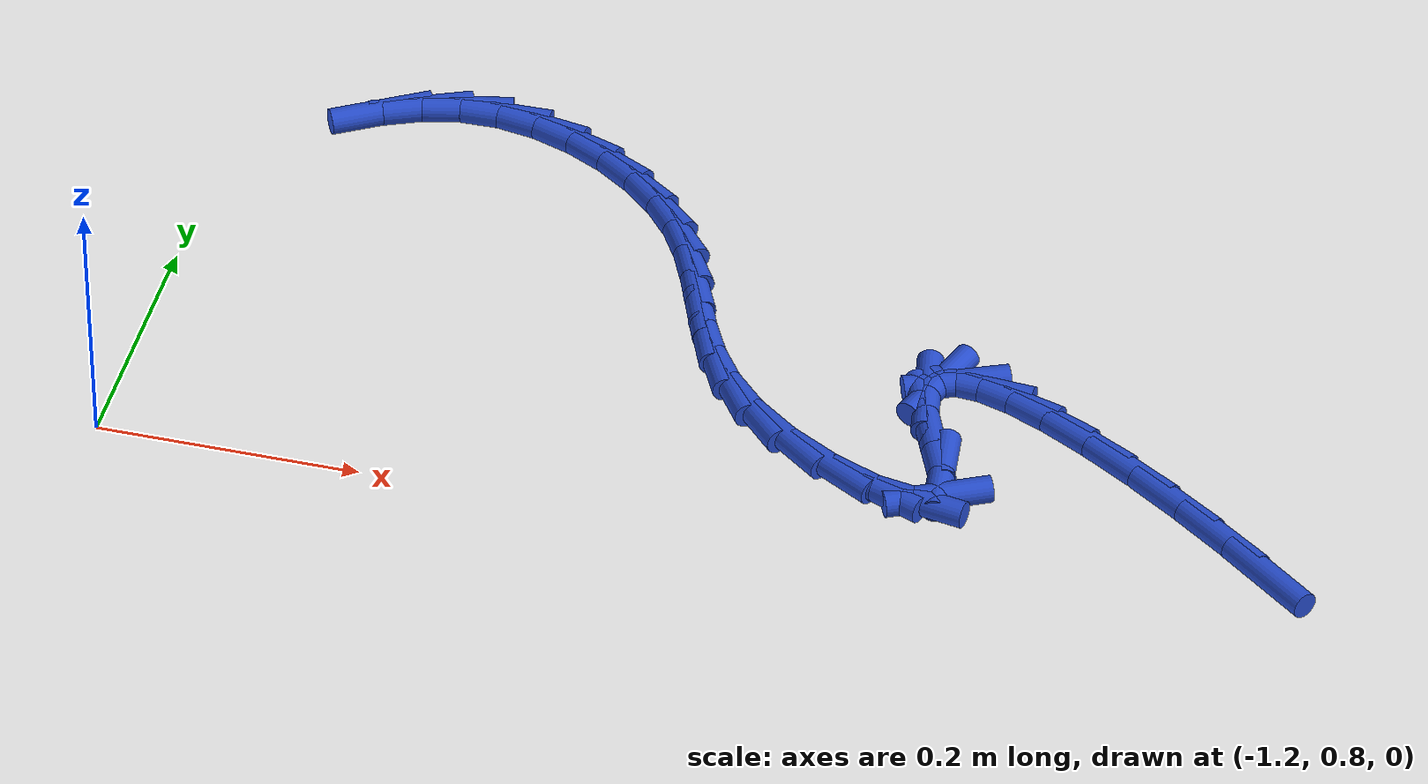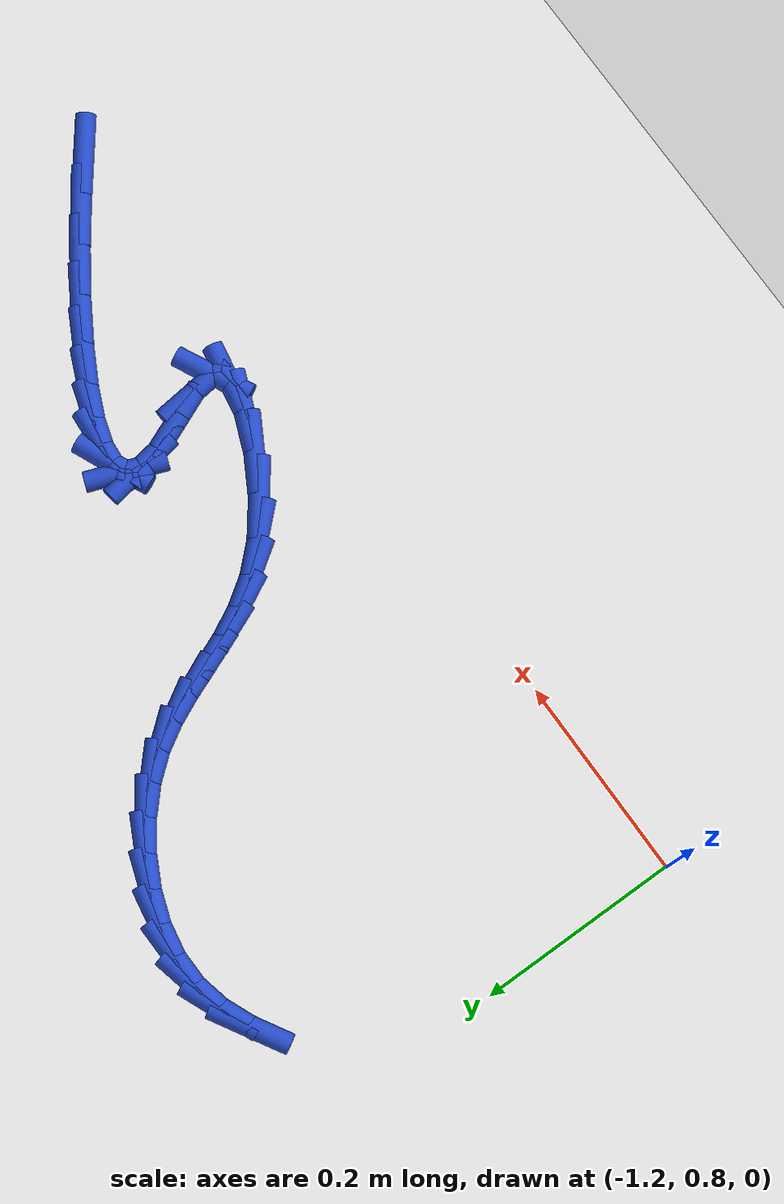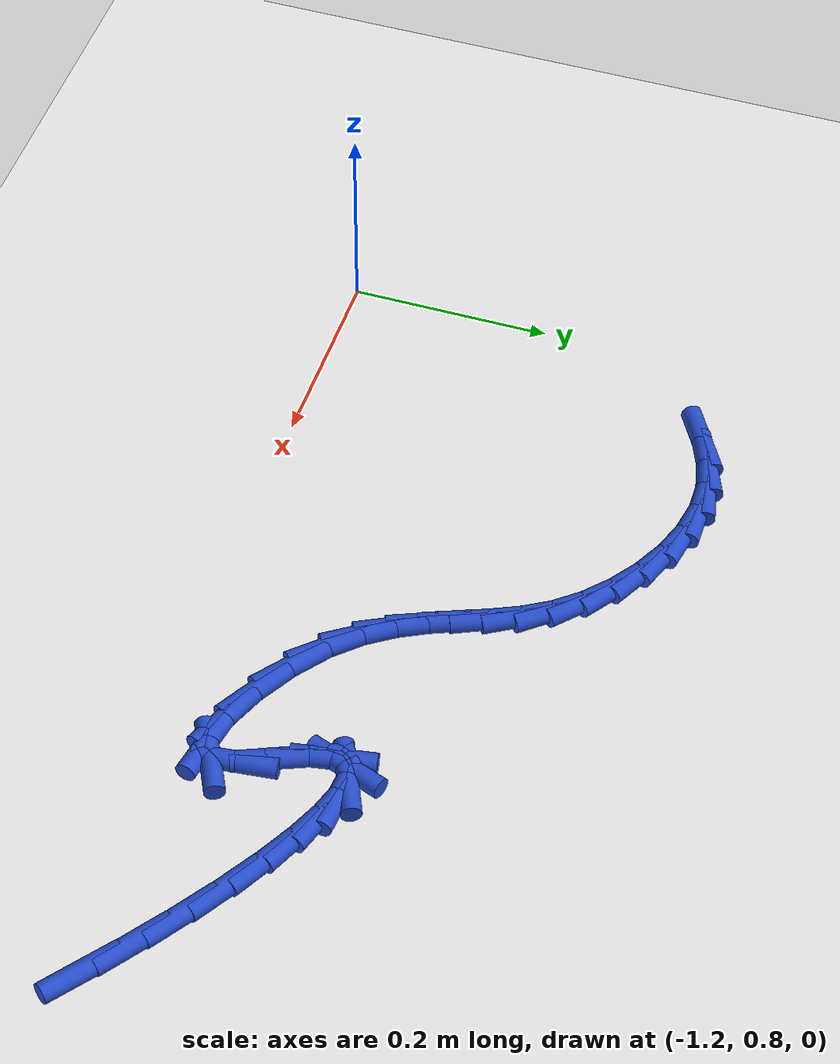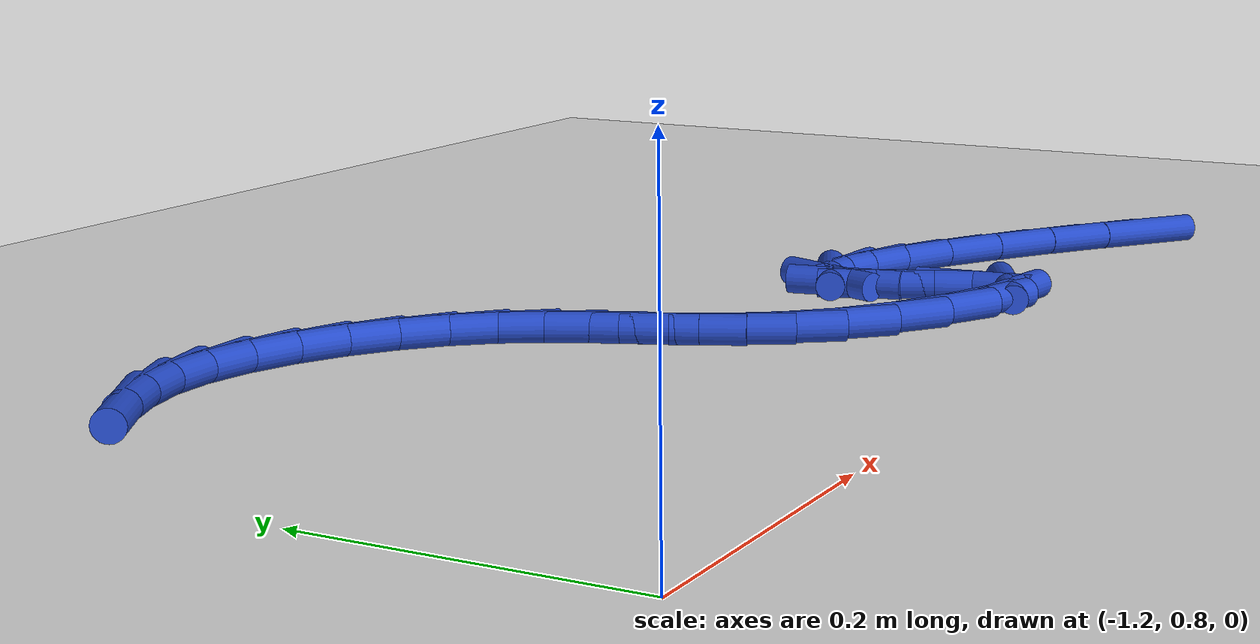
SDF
<sdf version="1.6">
 <world name="default">
  <model name="ground_plane">
   <static>1</static>
   <link name="link">
    <collision name="collision">
     <geometry><plane><normal>0 0 1</normal><size>100 100</size></plane></geometry>
     <surface><friction><ode><mu>100</mu><mu2>50</mu2></ode></friction></surface>
    </collision>
    <visual name="visual">
     <cast_shadows>0</cast_shadows>
     <geometry><plane><normal>0 0 1</normal><size>100 100</size></plane></geometry>
     <material>
      <script><uri>file://media/materials/scripts/gazebo.material</uri><name>Gazebo/WhiteGlow</name></script>
     </material>
    </visual>
   </link>
  </model>
  <model name="line">
   <link name="link_28">
    <pose>-0.3355101200194297 0.8449367694775937 0.01 0 1.57 -0.6567807551668474</pose>
    <collision name="collision">
     <geometry><cylinder><radius>0.01</radius><length>0.08</length></cylinder></geometry>
    </collision>
    <visual name="visual">
     <material>
      <script><name>Gazebo/Blue</name><uri>file://media/materials/scripts/gazebo.material</uri></script>
     </material>
     <geometry><cylinder><radius>0.01</radius><length>0.08</length></cylinder></geometry>
    </visual>
   </link>
   <link name="link_29">
    <pose>-0.37581360586087376 0.876009121944666 0.01 0 1.57 -0.62409989787336</pose>
    <collision name="collision">
     <geometry><cylinder><radius>0.01</radius><length>0.08</length></cylinder></geometry>
    </collision>
    <visual name="visual">
     <material>
      <script><name>Gazebo/Blue</name><uri>file://media/materials/scripts/gazebo.material</uri></script>
     </material>
     <geometry><cylinder><radius>0.01</radius><length>0.08</length></cylinder></geometry>
    </visual>
   </link>
   <link name="link_30">
    <pose>-0.4159045543676966 0.9048792829920496 0.01 0 1.57 -0.5884728200253018</pose>
    <collision name="collision">
     <geometry><cylinder><radius>0.01</radius><length>0.08</length></cylinder></geometry>
    </collision>
    <visual name="visual">
     <material>
      <script><name>Gazebo/Blue</name><uri>file://media/materials/scripts/gazebo.material</uri></script>
     </material>
     <geometry><cylinder><radius>0.01</radius><length>0.08</length></cylinder></geometry>
    </visual>
   </link>
   <link name="link_31">
    <pose>-0.45485111531029343 0.9308701178163069 0.01 0 1.57 -0.5466219645819852</pose>
    <collision name="collision">
     <geometry><cylinder><radius>0.01</radius><length>0.08</length></cylinder></geometry>
    </collision>
    <visual name="visual">
     <material>
      <script><name>Gazebo/Blue</name><uri>file://media/materials/scripts/gazebo.material</uri></script>
     </material>
     <geometry><cylinder><radius>0.01</radius><length>0.08</length></cylinder></geometry>
    </visual>
   </link>
   <link name="link_32">
    <pose>-0.4917214384590594 0.9533044916139998 0.01 0 1.57 -0.49319168367402105</pose>
    <collision name="collision">
     <geometry><cylinder><radius>0.01</radius><length>0.08</length></cylinder></geometry>
    </collision>
    <visual name="visual">
     <material>
      <script><name>Gazebo/Blue</name><uri>file://media/materials/scripts/gazebo.material</uri></script>
     </material>
     <geometry><cylinder><radius>0.01</radius><length>0.08</length></cylinder></geometry>
    </visual>
   </link>
   <link name="link_33">
    <pose>-0.5255836735843894 0.9715052695816899 0.01 0 1.57 -0.41798007829533684</pose>
    <collision name="collision">
     <geometry><cylinder><radius>0.01</radius><length>0.08</length></cylinder></geometry>
    </collision>
    <visual name="visual">
     <material>
      <script><name>Gazebo/Blue</name><uri>file://media/materials/scripts/gazebo.material</uri></script>
     </material>
     <geometry><cylinder><radius>0.01</radius><length>0.08</length></cylinder></geometry>
    </visual>
   </link>
   <link name="link_34">
    <pose>-0.5555059704566787 0.9847953169159389 0.01 0 1.57 -0.29829226663411934</pose>
    <collision name="collision">
     <geometry><cylinder><radius>0.01</radius><length>0.08</length></cylinder></geometry>
    </collision>
    <visual name="visual">
     <material>
      <script><name>Gazebo/Blue</name><uri>file://media/materials/scripts/gazebo.material</uri></script>
     </material>
     <geometry><cylinder><radius>0.01</radius><length>0.08</length></cylinder></geometry>
    </visual>
   </link>
   <link name="link_35">
    <pose>-0.5805564788463223 0.9924974988133093 0.01 0 1.57 -0.0745326102867308</pose>
    <collision name="collision">
     <geometry><cylinder><radius>0.01</radius><length>0.08</length></cylinder></geometry>
    </collision>
    <visual name="visual">
     <material>
      <script><name>Gazebo/Blue</name><uri>file://media/materials/scripts/gazebo.material</uri></script>
     </material>
     <geometry><cylinder><radius>0.01</radius><length>0.08</length></cylinder></geometry>
    </visual>
   </link>
   <link name="link_36">
    <pose>-0.5998033485237151 0.9939346804703619 0.01 0 1.57 0.4145032493987455</pose>
    <collision name="collision">
     <geometry><cylinder><radius>0.01</radius><length>0.08</length></cylinder></geometry>
    </collision>
    <visual name="visual">
     <material>
      <script><name>Gazebo/Blue</name><uri>file://media/materials/scripts/gazebo.material</uri></script>
     </material>
     <geometry><cylinder><radius>0.01</radius><length>0.08</length></cylinder></geometry>
    </visual>
   </link>
   <link name="link_37">
    <pose>-0.6123147292592526 0.9884297270836595 0.01 0 1.57 1.217215590794292</pose>
    <collision name="collision">
     <geometry><cylinder><radius>0.01</radius><length>0.08</length></cylinder></geometry>
    </collision>
    <visual name="visual">
     <material>
      <script><name>Gazebo/Blue</name><uri>file://media/materials/scripts/gazebo.material</uri></script>
     </material>
     <geometry><cylinder><radius>0.01</radius><length>0.08</length></cylinder></geometry>
    </visual>
   </link>
   <link name="link_38">
    <pose>-0.6171587708233295 0.9753055038497636 0.01 0 1.57 -1.397254527426382</pose>
    <collision name="collision">
     <geometry><cylinder><radius>0.01</radius><length>0.08</length></cylinder></geometry>
    </collision>
    <visual name="visual">
     <material>
      <script><name>Gazebo/Blue</name><uri>file://media/materials/scripts/gazebo.material</uri></script>
     </material>
     <geometry><cylinder><radius>0.01</radius><length>0.08</length></cylinder></geometry>
    </visual>
   </link>
   <link name="link_39">
    <pose>-0.6134036229863409 0.9538848759652357 0.01 0 1.57 -1.1716803246438623</pose>
    <collision name="collision">
     <geometry><cylinder><radius>0.01</radius><length>0.08</length></cylinder></geometry>
    </collision>
    <visual name="visual">
     <material>
      <script><name>Gazebo/Blue</name><uri>file://media/materials/scripts/gazebo.material</uri></script>
     </material>
     <geometry><cylinder><radius>0.01</radius><length>0.08</length></cylinder></geometry>
    </visual>
   </link>
   <link name="link_40">
    <pose>-0.6008384807656233 0.9240921200666977 0.01 0 1.57 -1.1612288086682636</pose>
    <collision name="collision">
     <geometry><cylinder><radius>0.01</radius><length>0.08</length></cylinder></geometry>
    </collision>
    <visual name="visual">
     <material>
      <script><name>Gazebo/Blue</name><uri>file://media/materials/scripts/gazebo.material</uri></script>
     </material>
     <geometry><cylinder><radius>0.01</radius><length>0.08</length></cylinder></geometry>
    </visual>
   </link>
   <link name="link_41">
    <pose>-0.5870671780746236 0.8923695686991802 0.01 0 1.57 -1.4590879658373426</pose>
    <collision name="collision">
     <geometry><cylinder><radius>0.01</radius><length>0.08</length></cylinder></geometry>
    </collision>
    <visual name="visual">
     <material>
      <script><name>Gazebo/Blue</name><uri>file://media/materials/scripts/gazebo.material</uri></script>
     </material>
     <geometry><cylinder><radius>0.01</radius><length>0.08</length></cylinder></geometry>
    </visual>
   </link>
   <link name="link_42">
    <pose>-0.584461156380133 0.8691378904946149 0.01 0 1.57 0.4635677971690647</pose>
    <collision name="collision">
     <geometry><cylinder><radius>0.01</radius><length>0.08</length></cylinder></geometry>
    </collision>
    <visual name="visual">
     <material>
      <script><name>Gazebo/Blue</name><uri>file://media/materials/scripts/gazebo.material</uri></script>
     </material>
     <geometry><cylinder><radius>0.01</radius><length>0.08</length></cylinder></geometry>
    </visual>
   </link>
   <link name="link_43">
    <pose>-0.6003962649047978 0.8611719259315979 0.01 0 1.57 -0.17376023900306845</pose>
    <collision name="collision">
     <geometry><cylinder><radius>0.01</radius><length>0.08</length></cylinder></geometry>
    </collision>
    <visual name="visual">
     <material>
      <script><name>Gazebo/Blue</name><uri>file://media/materials/scripts/gazebo.material</uri></script>
     </material>
     <geometry><cylinder><radius>0.01</radius><length>0.08</length></cylinder></geometry>
    </visual>
   </link>
   <link name="link_44">
    <pose>-0.6301405659923899 0.8663929543788353 0.01 0 1.57 -0.3854750708869507</pose>
    <collision name="collision">
     <geometry><cylinder><radius>0.01</radius><length>0.08</length></cylinder></geometry>
    </collision>
    <visual name="visual">
     <material>
      <script><name>Gazebo/Blue</name><uri>file://media/materials/scripts/gazebo.material</uri></script>
     </material>
     <geometry><cylinder><radius>0.01</radius><length>0.08</length></cylinder></geometry>
    </visual>
   </link>
   <link name="link_45">
    <pose>-0.6671908218942201 0.8814270297629732 0.01 0 1.57 -0.516011976652437</pose>
    <collision name="collision">
     <geometry><cylinder><radius>0.01</radius><length>0.08</length></cylinder></geometry>
    </collision>
    <visual name="visual">
     <material>
      <script><name>Gazebo/Blue</name><uri>file://media/materials/scripts/gazebo.material</uri></script>
     </material>
     <geometry><cylinder><radius>0.01</radius><length>0.08</length></cylinder></geometry>
    </visual>
   </link>
   <link name="link_46">
    <pose>-0.705043794861601 0.9029002060106583 0.01 0 1.57 -0.6504916208534457</pose>
    <collision name="collision">
     <geometry><cylinder><radius>0.01</radius><length>0.08</length></cylinder></geometry>
    </collision>
    <visual name="visual">
     <material>
      <script><name>Gazebo/Blue</name><uri>file://media/materials/scripts/gazebo.material</uri></script>
     </material>
     <geometry><cylinder><radius>0.01</radius><length>0.08</length></cylinder></geometry>
    </visual>
   </link>
   <link name="link_47">
    <pose>-0.7373732192416151 0.9275022650520145 0.01 0 1.57 -0.8126155202004183</pose>
    <collision name="collision">
     <geometry><cylinder><radius>0.01</radius><length>0.08</length></cylinder></geometry>
    </collision>
    <visual name="visual">
     <material>
      <script><name>Gazebo/Blue</name><uri>file://media/materials/scripts/gazebo.material</uri></script>
     </material>
     <geometry><cylinder><radius>0.01</radius><length>0.08</length></cylinder></geometry>
    </visual>
   </link>
   <link name="link_48">
    <pose>-0.7618691402108032 0.9533692703305908 0.01 0 1.57 -0.9690107859283018</pose>
    <collision name="collision">
     <geometry><cylinder><radius>0.01</radius><length>0.08</length></cylinder></geometry>
    </collision>
    <visual name="visual">
     <material>
      <script><name>Gazebo/Blue</name><uri>file://media/materials/scripts/gazebo.material</uri></script>
     </material>
     <geometry><cylinder><radius>0.01</radius><length>0.08</length></cylinder></geometry>
    </visual>
   </link>
   <link name="link_49">
    <pose>-0.7802081149660071 0.9800728361929484 0.01 0 1.57 -1.0941935787418033</pose>
    <collision name="collision">
     <geometry><cylinder><radius>0.01</radius><length>0.08</length></cylinder></geometry>
    </collision>
    <visual name="visual">
     <material>
      <script><name>Gazebo/Blue</name><uri>file://media/materials/scripts/gazebo.material</uri></script>
     </material>
     <geometry><cylinder><radius>0.01</radius><length>0.08</length></cylinder></geometry>
    </visual>
   </link>
   <link name="link_50">
    <pose>-0.7942377129343955 1.007246158829731 0.01 0 1.57 -1.169690654146283</pose>
    <collision name="collision">
     <geometry><cylinder><radius>0.01</radius><length>0.08</length></cylinder></geometry>
    </collision>
    <visual name="visual">
     <material>
      <script><name>Gazebo/Blue</name><uri>file://media/materials/scripts/gazebo.material</uri></script>
     </material>
     <geometry><cylinder><radius>0.01</radius><length>0.08</length></cylinder></geometry>
    </visual>
   </link>
   <link name="link_51">
    <pose>-0.8058055035431388 1.034522434431586 0.01 0 1.57 -1.1855571219605192</pose>
    <collision name="collision">
     <geometry><cylinder><radius>0.01</radius><length>0.08</length></cylinder></geometry>
    </collision>
    <visual name="visual">
     <material>
      <script><name>Gazebo/Blue</name><uri>file://media/materials/scripts/gazebo.material</uri></script>
     </material>
     <geometry><cylinder><radius>0.01</radius><length>0.08</length></cylinder></geometry>
    </visual>
   </link>
   <link name="link_52">
    <pose>-0.8167590562194057 1.061534859189157 0.01 0 1.57 -1.138054788118516</pose>
    <collision name="collision">
     <geometry><cylinder><radius>0.01</radius><length>0.08</length></cylinder></geometry>
    </collision>
    <visual name="visual">
     <material>
      <script><name>Gazebo/Blue</name><uri>file://media/materials/scripts/gazebo.material</uri></script>
     </material>
     <geometry><cylinder><radius>0.01</radius><length>0.08</length></cylinder></geometry>
    </visual>
   </link>
   <link name="link_53">
    <pose>-0.8289459403903655 1.0879166292930893 0.01 0 1.57 -1.0293000248883601</pose>
    <collision name="collision">
     <geometry><cylinder><radius>0.01</radius><length>0.08</length></cylinder></geometry>
    </collision>
    <visual name="visual">
     <material>
      <script><name>Gazebo/Blue</name><uri>file://media/materials/scripts/gazebo.material</uri></script>
     </material>
     <geometry><cylinder><radius>0.01</radius><length>0.08</length></cylinder></geometry>
    </visual>
   </link>
   <link name="link_54">
    <pose>-0.8442137254831876 1.1133009409340282 0.01 0 1.57 -0.8795882266533045</pose>
    <collision name="collision">
     <geometry><cylinder><radius>0.01</radius><length>0.08</length></cylinder></geometry>
    </collision>
    <visual name="visual">
     <material>
      <script><name>Gazebo/Blue</name><uri>file://media/materials/scripts/gazebo.material</uri></script>
     </material>
     <geometry><cylinder><radius>0.01</radius><length>0.08</length></cylinder></geometry>
    </visual>
   </link>
   <link name="link_55">
    <pose>-0.8640414653441205 1.1372657448645194 0.01 0 1.57 -0.7380993372572499</pose>
    <collision name="collision">
     <geometry><cylinder><radius>0.01</radius><length>0.08</length></cylinder></geometry>
    </collision>
    <visual name="visual">
     <material>
      <script><name>Gazebo/Blue</name><uri>file://media/materials/scripts/gazebo.material</uri></script>
     </material>
     <geometry><cylinder><radius>0.01</radius><length>0.08</length></cylinder></geometry>
    </visual>
   </link>
   <link name="link_56">
    <pose>-0.888058248411459 1.1591116571605773 0.01 0 1.57 -0.6073159047985717</pose>
    <collision name="collision">
     <geometry><cylinder><radius>0.01</radius><length>0.08</length></cylinder></geometry>
    </collision>
    <visual name="visual">
     <material>
      <script><name>Gazebo/Blue</name><uri>file://media/materials/scripts/gazebo.material</uri></script>
     </material>
     <geometry><cylinder><radius>0.01</radius><length>0.08</length></cylinder></geometry>
    </visual>
   </link>
   <link name="link_57">
    <pose>-0.9153138957969427 1.178052453941131 0.01 0 1.57 -0.4764899474320557</pose>
    <collision name="collision">
     <geometry><cylinder><radius>0.01</radius><length>0.08</length></cylinder></geometry>
    </collision>
    <visual name="visual">
     <material>
      <script><name>Gazebo/Blue</name><uri>file://media/materials/scripts/gazebo.material</uri></script>
     </material>
     <geometry><cylinder><radius>0.01</radius><length>0.08</length></cylinder></geometry>
    </visual>
   </link>
   <link name="link_58">
    <pose>-0.944858028184237 1.1933018812782483 0.01 0 1.57 -0.33560766737780984</pose>
    <collision name="collision">
     <geometry><cylinder><radius>0.01</radius><length>0.08</length></cylinder></geometry>
    </collision>
    <visual name="visual">
     <material>
      <script><name>Gazebo/Blue</name><uri>file://media/materials/scripts/gazebo.material</uri></script>
     </material>
     <geometry><cylinder><radius>0.01</radius><length>0.08</length></cylinder></geometry>
    </visual>
   </link>
   <link name="link_59">
    <pose>-0.975740266257008 1.2040736852439968 0.01 0 1.57 -0.17435266647738792</pose>
    <collision name="collision">
     <geometry><cylinder><radius>0.01</radius><length>0.08</length></cylinder></geometry>
    </collision>
    <visual name="visual">
     <material>
      <script><name>Gazebo/Blue</name><uri>file://media/materials/scripts/gazebo.material</uri></script>
     </material>
     <geometry><cylinder><radius>0.01</radius><length>0.08</length></cylinder></geometry>
    </visual>
   </link>
   <link name="link_60">
    <pose>-1.0070102306989215 1.2095816119104448 0.01 0 1.57 0.017577485361048552</pose>
    <collision name="collision">
     <geometry><cylinder><radius>0.01</radius><length>0.08</length></cylinder></geometry>
    </collision>
    <visual name="visual">
     <material>
      <script><name>Gazebo/Blue</name><uri>file://media/materials/scripts/gazebo.material</uri></script>
     </material>
     <geometry><cylinder><radius>0.01</radius><length>0.08</length></cylinder></geometry>
    </visual>
   </link>
   <link name="link_61">
    <pose>-1.0377189499454738 1.2090417742487674 0.01 0 1.57 0.22717992599412895</pose>
    <collision name="collision">
     <geometry><cylinder><radius>0.01</radius><length>0.08</length></cylinder></geometry>
    </collision>
    <visual name="visual">
     <material>
      <script><name>Gazebo/Blue</name><uri>file://media/materials/scripts/gazebo.material</uri></script>
     </material>
     <geometry><cylinder><radius>0.01</radius><length>0.08</length></cylinder></geometry>
    </visual>
   </link>
   <link name="link_62">
    <pose>-1.0672424989679263 1.2022167965816626 0.01 0 1.57 0.4022519639422933</pose>
    <collision name="collision">
     <geometry><cylinder><radius>0.01</radius><length>0.08</length></cylinder></geometry>
    </collision>
    <visual name="visual">
     <material>
      <script><name>Gazebo/Blue</name><uri>file://media/materials/scripts/gazebo.material</uri></script>
     </material>
     <geometry><cylinder><radius>0.01</radius><length>0.08</length></cylinder></geometry>
    </visual>
   </link>
   <link name="link_63">
    <pose>-1.0956956959883863 1.1901113763752855 0.01 0 1.57 0.5310340651734727</pose>
    <collision name="collision">
     <geometry><cylinder><radius>0.01</radius><length>0.08</length></cylinder></geometry>
    </collision>
    <visual name="visual">
     <material>
      <script><name>Gazebo/Blue</name><uri>file://media/materials/scripts/gazebo.material</uri></script>
     </material>
     <geometry><cylinder><radius>0.01</radius><length>0.08</length></cylinder></geometry>
    </visual>
   </link>
  </model>
 </world>
</sdf>
